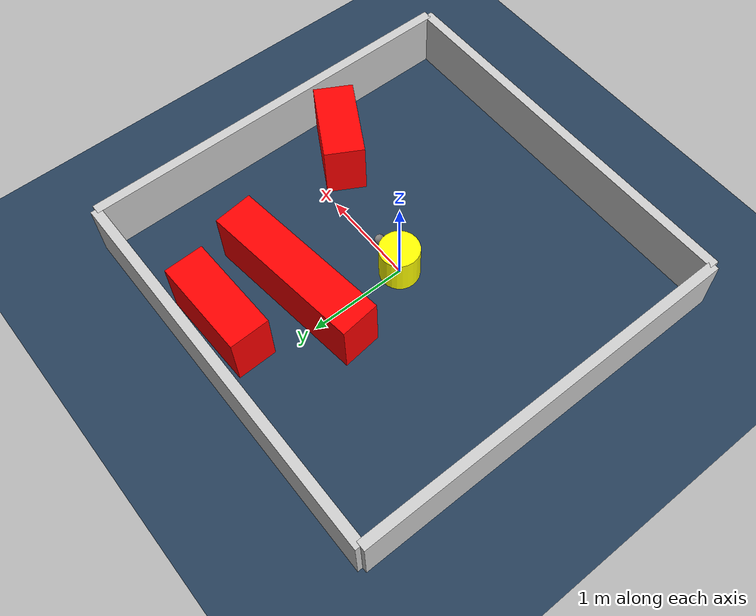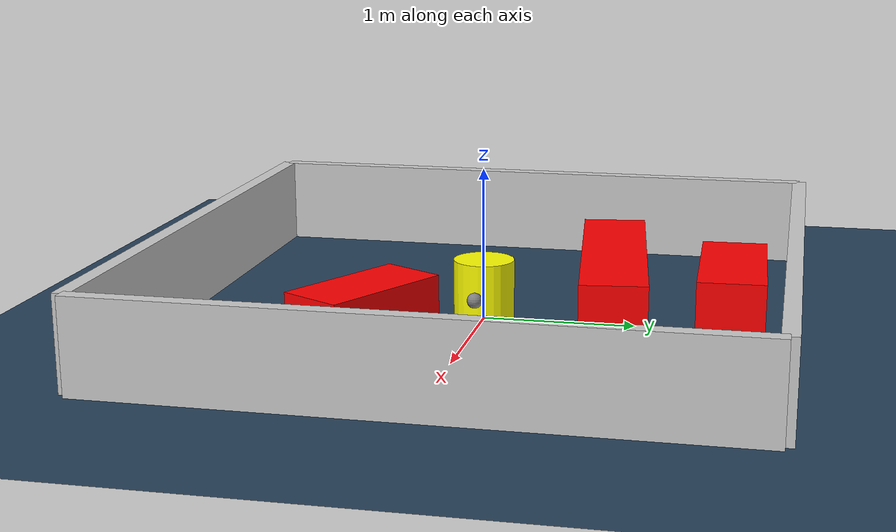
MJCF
<?xml version="1.0" ?>
<mujoco model="generated_environment">
  <option timestep="0.01" integrator="RK4" cone="elliptic"/>
  <default>
    <geom density="1"/>
  </default>
  <asset>
    <texture builtin="gradient" height="3072" rgb1="0.3 0.5 0.7" rgb2="0 0 0" type="skybox" width="512"/>
    <texture builtin="checker" height="300" mark="edge" markrgb="0.8 0.8 0.8" name="groundplane" rgb1="0.2 0.3 0.4" rgb2="0.1 0.2 0.3" type="2d" width="300"/>
    <material name="groundplane" reflectance="0.2" texrepeat="5 5" texture="groundplane" texuniform="true"/>
    <material name="robot" rgba="0.0 1.0 0.0 1"/>
  </asset>
  <worldbody>
    <light dir="0 0 -1" directional="true" pos="0 0 1.5"/>
    <geom condim="4" friction="1.0 0.005 0.001" material="groundplane" name="floor" size="0 0 0.05" type="plane"/>
    <body name="walls">
      <geom name="wall_1" condim="4" pos="-2.0 0.0 0.3" rgba="0.800000011920929 0.800000011920929 0.800000011920929 1.0" size="0.05 2.0 0.3" type="box"/>
      <geom name="wall_2" condim="4" pos="2.0 0.0 0.3" rgba="0.800000011920929 0.800000011920929 0.800000011920929 1.0" size="0.05 2.0 0.3" type="box"/>
      <geom name="wall_3" condim="4" pos="0.0 -2.0 0.3" rgba="0.800000011920929 0.800000011920929 0.800000011920929 1.0" size="2.0 0.05 0.3" type="box"/>
      <geom name="wall_4" condim="4" pos="0.0 2.0 0.3" rgba="0.800000011920929 0.800000011920929 0.800000011920929 1.0" size="2.0 0.05 0.3" type="box"/>
    </body>
    <body name="robot">
      <joint name="joint_x" type="slide" pos="0 0 0" axis="1 0 0"/>
      <joint name="joint_y" type="slide" pos="0 0 0" axis="0 1 0"/>
      <geom name="robot" type="sphere" pos="0.3 0.0 0.2" size="0.05" mass="5." friction="1.0 0.005 0.0001" condim="4" rgba="0.5 0.5 0.5 1.0"/>
      <site name="sensor_ball"/>
    </body>
    <body name="obstacle_movable_1">
      <geom name="obstacle_movable_1" condim="4" pos="0.0 0.0 0.2" euler="0 0 0.0" friction="1.0 0.005 0.001" rgba="1.0 1.0 0.0 1.0" size="0.2 0.2 0.0" type="cylinder" mass="0.1"/>
      <joint type="free"/>
    </body>
    <body name="obstacle_2_static">
      <geom name="obstacle_2_static" condim="4" pos="0.38186474184706154 0.9014399039012038 0.3" euler="0 0 186.7984951084156" friction="1.0 0.005 0.001" rgba="1 0 0 1" size="0.8435104631431793 0.2 0.3" type="box"/>
    </body>
    <body name="obstacle_3_static">
      <geom name="obstacle_3_static" condim="4" pos="1.4518360031355573 -0.40287289115061653 0.3" euler="0 0 150.7157271535559" friction="1.0 0.005 0.001" rgba="1 0 0 1" size="0.4192938655778327 0.2 0.3" type="box"/>
    </body>
    <body name="obstacle_4_static">
      <geom name="obstacle_4_static" condim="4" pos="0.5351976216917502 1.6384866163656013 0.3" euler="0 0 181.806775265789" friction="1.0 0.005 0.001" rgba="1 0 0 1" size="0.5033675600069701 0.2 0.3" type="box"/>
    </body>
  </worldbody>
  <actuator>
    <motor name="actuator_x" joint="joint_x" gear="1" ctrlrange="-1 1"/>
    <motor name="actuator_y" joint="joint_y" gear="1" ctrlrange="-1 1"/>
  </actuator>
</mujoco>
